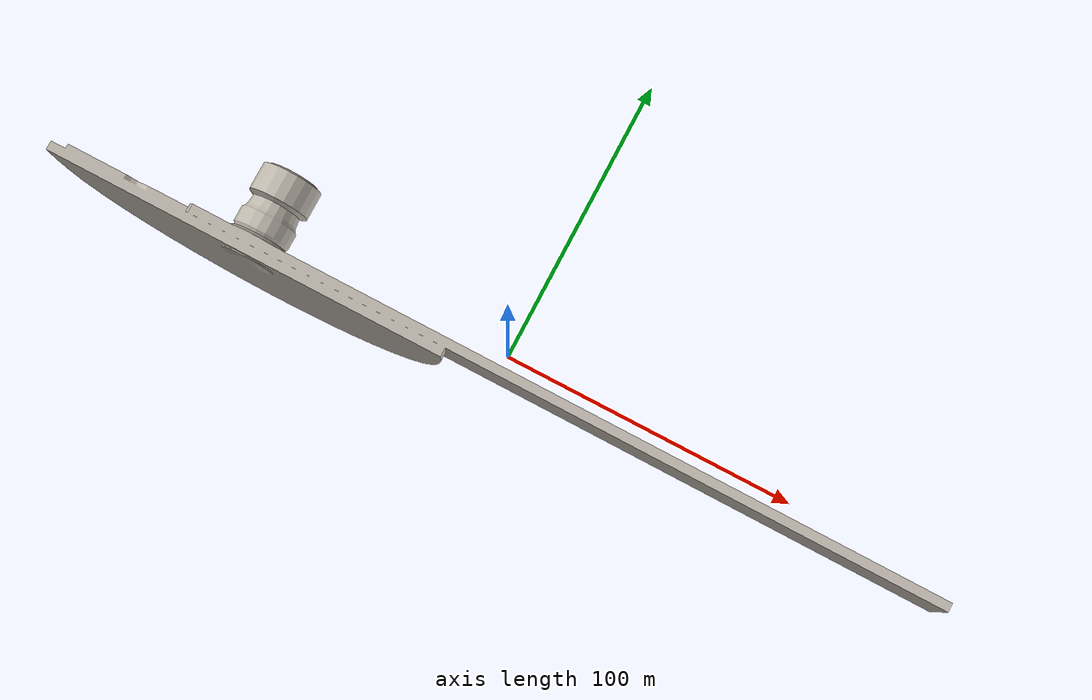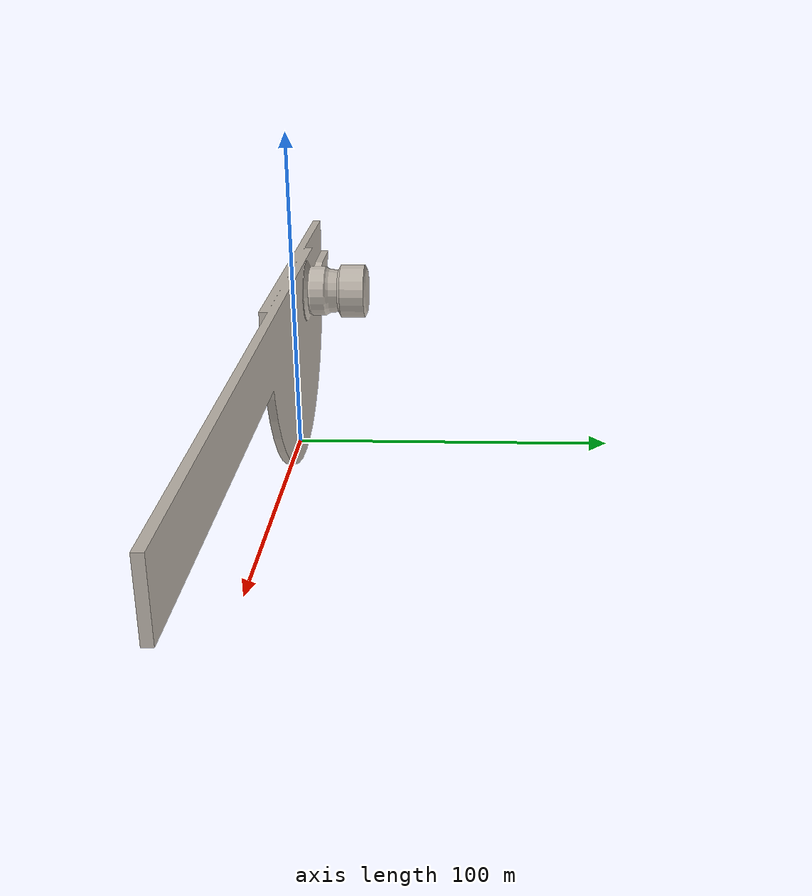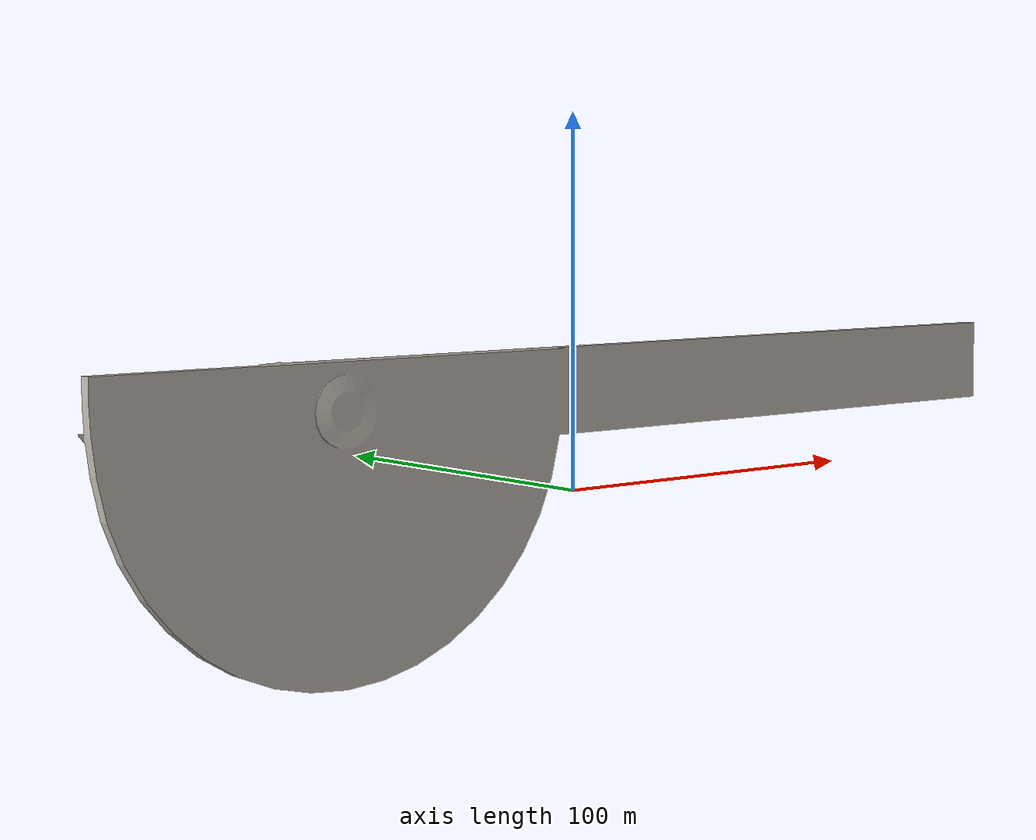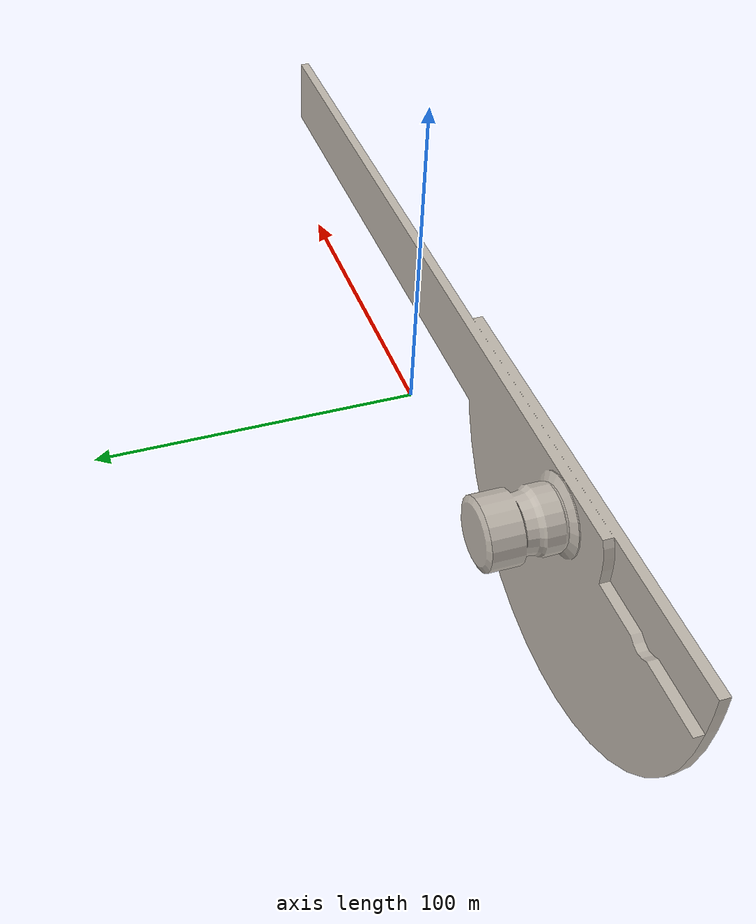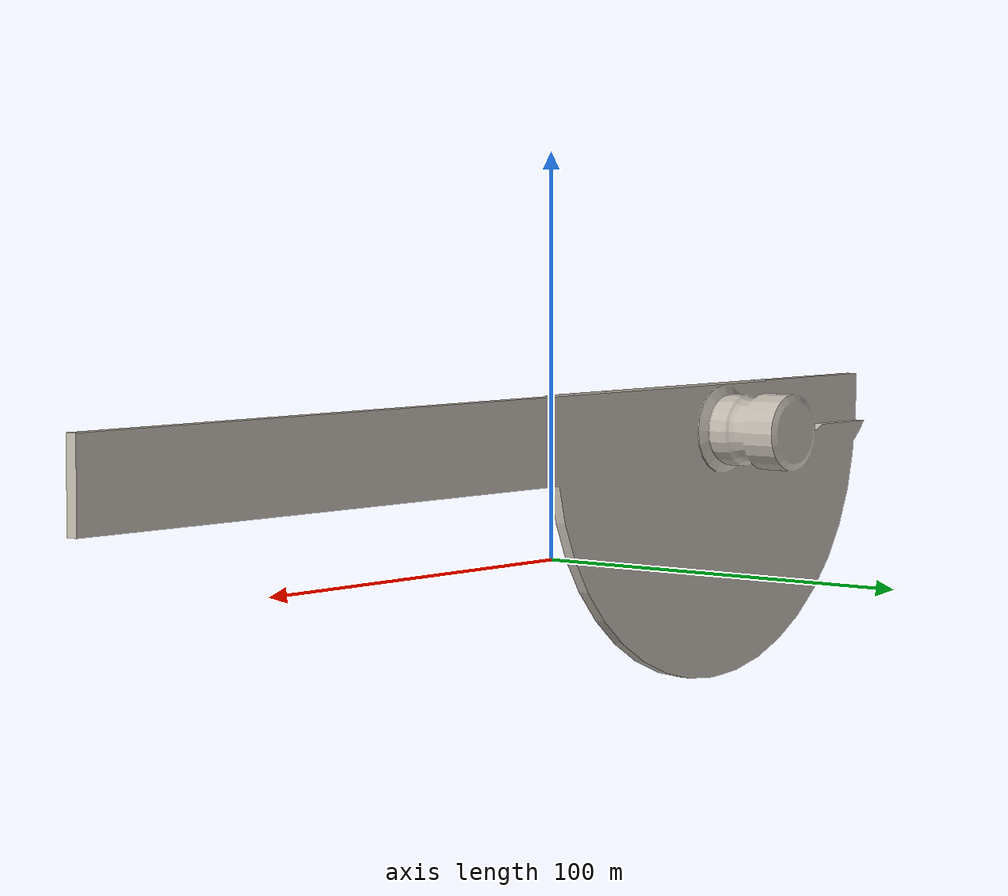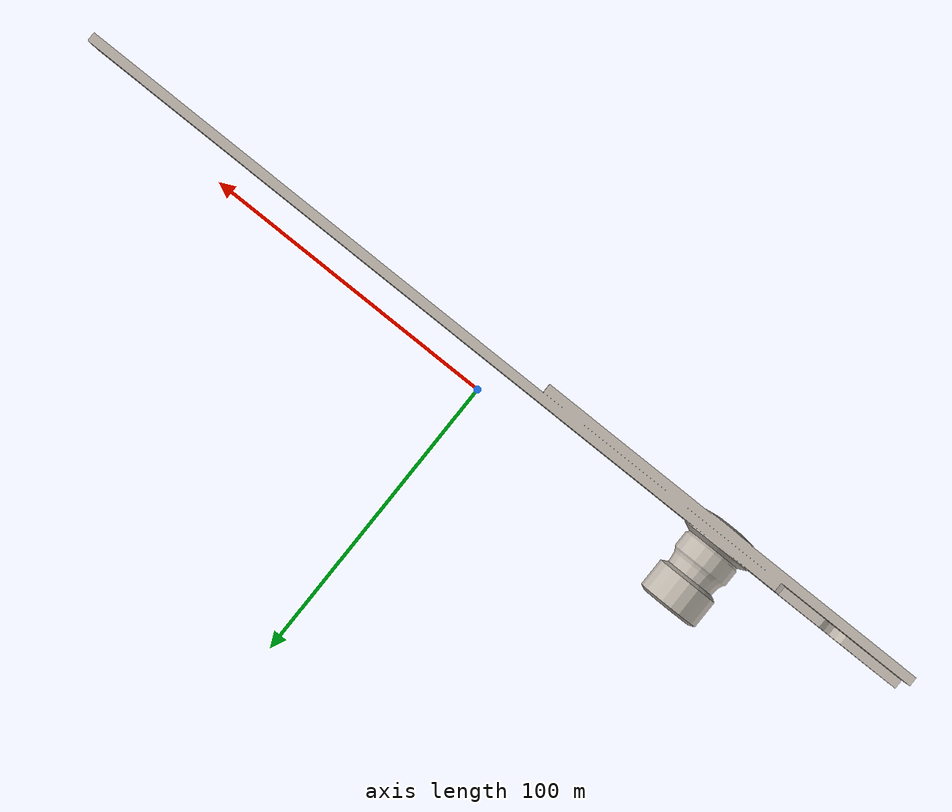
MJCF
<?xml version="1.0" encoding="utf-8"?>
<mujoco model="Protractor">
  <default>
    <default class="visual">
      <geom group="2" type="mesh" contype="0" conaffinity="0"/>
    </default>
    <default class="collision">
      <geom group="3" type="mesh"/>
    </default>
  </default>
  <asset>
    <texture type="2d" name="Protractor_BaseColor" file="Protractor/Protractor_BaseColor.png"/>
    <material name="material_0" texture="Protractor_BaseColor" specular="1.0" shininess="0.5"/>
    <mesh file="Protractor/Protractor.obj" name="Protractor"/>
    <mesh file="Protractor/Protractor_collision_0.obj" name="Protractor_collision_0"/>
    <mesh file="Protractor/Protractor_collision_1.obj" name="Protractor_collision_1"/>
    <mesh file="Protractor/Protractor_collision_2.obj" name="Protractor_collision_2"/>
  </asset>
  <worldbody>
    <body name="Protractor">
      <inertial mass="0.1" diaginertia="0.001 0.001 0.001" pos="0 0 0"/>
      <geom material="material_0" mesh="Protractor" class="visual"/>
      <geom mesh="Protractor_collision_0" rgba="0.6999998471299561 0.02952925155434971 0.3241725122168454 1" class="collision"/>
      <geom mesh="Protractor_collision_1" rgba="0.007182697512916225 0.8268344310540505 0.7050153568769392 1" class="collision"/>
      <geom mesh="Protractor_collision_2" rgba="0.08149090329362596 0.32219125362983525 0.4028504970838789 1" class="collision"/>
    </body>
  </worldbody>
</mujoco>
